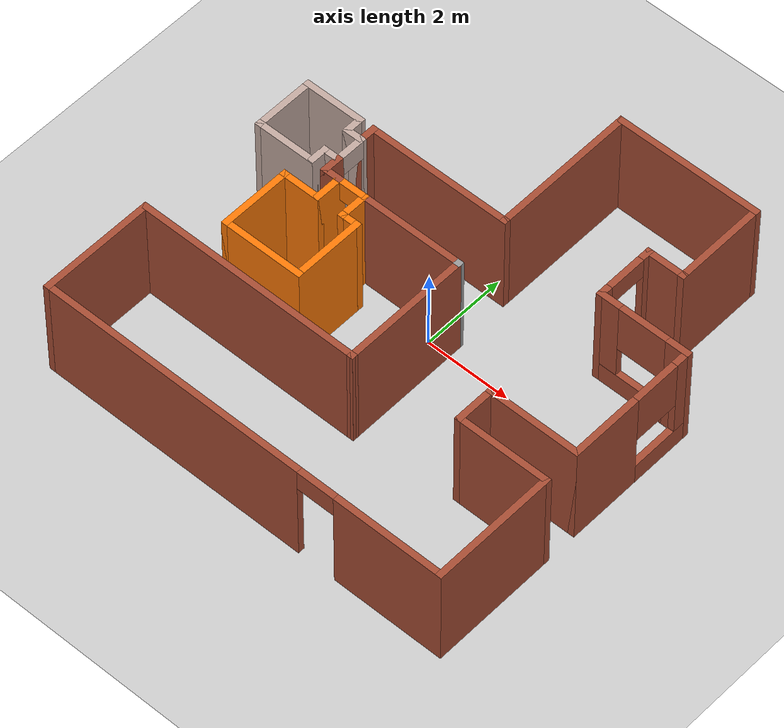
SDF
<sdf version="1.6">
 <world name="default">
  <model name="ground_plane">
   <static>1</static>
   <link name="link">
    <collision name="collision">
     <geometry><plane><normal>0 0 1</normal><size>100 100</size></plane></geometry>
     <surface>
      <contact><collide_bitmask>65535</collide_bitmask></contact>
      <friction><ode><mu>100</mu><mu2>50</mu2></ode></friction>
     </surface>
    </collision>
    <visual name="visual">
     <cast_shadows>0</cast_shadows>
     <geometry><plane><normal>0 0 1</normal><size>100 100</size></plane></geometry>
     <material>
      <script><uri>file://media/materials/scripts/gazebo.material</uri><name>Gazebo/Grey</name></script>
     </material>
    </visual>
   </link>
  </model>
  <model name="home">
   <pose>0.07564 -0.09647 0 0 -0 0</pose>
   <link name="Wall_10">
    <collision name="Wall_10_Collision">
     <geometry><box><size>2.25 0.15 2.5</size></box></geometry>
     <pose>0 0 1.25 0 -0 0</pose>
    </collision>
    <visual name="Wall_10_Visual">
     <pose>0 0 1.25 0 -0 0</pose>
     <geometry><box><size>2.25 0.15 2.5</size></box></geometry>
     <material>
      <script><uri>file://media/materials/scripts/gazebo.material</uri><name>Gazebo/Bricks</name></script>
      <ambient>1 1 1 1</ambient>
     </material>
     <meta><layer>0</layer></meta>
    </visual>
    <pose>3.67503 4.075 0 0 -0 1.5708</pose>
   </link>
   <link name="Wall_11">
    <collision name="Wall_11_Collision">
     <geometry><box><size>3.5 0.15 2.5</size></box></geometry>
     <pose>0 0 1.25 0 -0 0</pose>
    </collision>
    <visual name="Wall_11_Visual">
     <pose>0 0 1.25 0 -0 0</pose>
     <geometry><box><size>3.5 0.15 2.5</size></box></geometry>
     <material>
      <script><uri>file://media/materials/scripts/gazebo.material</uri><name>Gazebo/Bricks</name></script>
      <ambient>1 1 1 1</ambient>
     </material>
     <meta><layer>0</layer></meta>
    </visual>
    <pose>2.00003 5.125 0 0 -0 3.14159</pose>
   </link>
   <link name="Wall_12">
    <collision name="Wall_12_Collision">
     <geometry><box><size>3.5 0.15 2.5</size></box></geometry>
     <pose>0 0 1.25 0 -0 0</pose>
    </collision>
    <visual name="Wall_12_Visual">
     <pose>0 0 1.25 0 -0 0</pose>
     <geometry><box><size>3.5 0.15 2.5</size></box></geometry>
     <material>
      <script><uri>file://media/materials/scripts/gazebo.material</uri><name>Gazebo/Bricks</name></script>
      <ambient>1 1 1 1</ambient>
     </material>
     <meta><layer>0</layer></meta>
    </visual>
    <pose>0.325032 3.45 0 0 0 -1.5708</pose>
   </link>
   <link name="Wall_13">
    <collision name="Wall_13_Collision">
     <geometry><box><size>3.5 0.15 2.5</size></box></geometry>
     <pose>0 0 1.25 0 -0 0</pose>
    </collision>
    <visual name="Wall_13_Visual">
     <pose>0 0 1.25 0 -0 0</pose>
     <geometry><box><size>3.5 0.15 2.5</size></box></geometry>
     <material>
      <script><uri>file://media/materials/scripts/gazebo.material</uri><name>Gazebo/Bricks</name></script>
      <ambient>1 1 1 1</ambient>
     </material>
     <meta><layer>0</layer></meta>
    </visual>
    <pose>-1.34997 1.775 0 0 -0 3.14159</pose>
   </link>
   <link name="Wall_14">
    <collision name="Wall_14_Collision">
     <geometry><box><size>0.5 0.15 2.5</size></box></geometry>
     <pose>0 0 1.25 0 -0 0</pose>
    </collision>
    <visual name="Wall_14_Visual">
     <pose>0 0 1.25 0 -0 0</pose>
     <geometry><box><size>0.5 0.15 2.5</size></box></geometry>
     <material>
      <script><uri>file://media/materials/scripts/gazebo.material</uri><name>Gazebo/Bricks</name></script>
      <ambient>1 1 1 1</ambient>
     </material>
     <meta><layer>0</layer></meta>
    </visual>
    <pose>-3.02497 1.6 0 0 0 -1.5708</pose>
   </link>
   <link name="Wall_15">
    <collision name="Wall_15_Collision">
     <geometry><box><size>0.5 0.15 2.5</size></box></geometry>
     <pose>0 0 1.25 0 -0 0</pose>
    </collision>
    <visual name="Wall_15_Visual">
     <pose>0 0 1.25 0 -0 0</pose>
     <geometry><box><size>0.5 0.15 2.5</size></box></geometry>
     <material>
      <script><uri>file://media/materials/scripts/gazebo.material</uri><name>Gazebo/Grey</name></script>
      <ambient>0.760784 0.662745 0.627451 1</ambient>
     </material>
     <meta><layer>0</layer></meta>
    </visual>
    <pose>-3.19997 1.425 0 0 -0 3.14159</pose>
   </link>
   <link name="Wall_16">
    <collision name="Wall_16_Collision">
     <geometry><box><size>0.5 0.15 2.5</size></box></geometry>
     <pose>0 0 1.25 0 -0 0</pose>
    </collision>
    <visual name="Wall_16_Visual">
     <pose>0 0 1.25 0 -0 0</pose>
     <geometry><box><size>0.5 0.15 2.5</size></box></geometry>
     <material>
      <script><uri>file://media/materials/scripts/gazebo.material</uri><name>Gazebo/Grey</name></script>
      <ambient>0.760784 0.662745 0.627451 1</ambient>
     </material>
     <meta><layer>0</layer></meta>
    </visual>
    <pose>-3.37497 1.6 0 0 -0 1.5708</pose>
   </link>
   <link name="Wall_17">
    <collision name="Wall_17_Collision">
     <geometry><box><size>1.5 0.15 2.5</size></box></geometry>
     <pose>0 0 1.25 0 -0 0</pose>
    </collision>
    <visual name="Wall_17_Visual">
     <pose>0 0 1.25 0 -0 0</pose>
     <geometry><box><size>1.5 0.15 2.5</size></box></geometry>
     <material>
      <script><uri>file://media/materials/scripts/gazebo.material</uri><name>Gazebo/Grey</name></script>
      <ambient>0.760784 0.662745 0.627451 1</ambient>
     </material>
     <meta><layer>0</layer></meta>
    </visual>
    <pose>-4.04997 1.775 0 0 -0 3.14159</pose>
   </link>
   <link name="Wall_18">
    <collision name="Wall_18_Collision">
     <geometry><box><size>1.5 0.15 2.5</size></box></geometry>
     <pose>0 0 1.25 0 -0 0</pose>
    </collision>
    <visual name="Wall_18_Visual">
     <pose>0 0 1.25 0 -0 0</pose>
     <geometry><box><size>1.5 0.15 2.5</size></box></geometry>
     <material>
      <script><uri>file://media/materials/scripts/gazebo.material</uri><name>Gazebo/Grey</name></script>
      <ambient>0.760784 0.662745 0.627451 1</ambient>
     </material>
     <meta><layer>0</layer></meta>
    </visual>
    <pose>-4.72497 1.1 0 0 0 -1.5708</pose>
   </link>
   <link name="Wall_19">
    <collision name="Wall_19_Collision">
     <geometry><box><size>1.5 0.15 2.5</size></box></geometry>
     <pose>0 0 1.25 0 -0 0</pose>
    </collision>
    <visual name="Wall_19_Visual">
     <pose>0 0 1.25 0 -0 0</pose>
     <geometry><box><size>1.5 0.15 2.5</size></box></geometry>
     <material>
      <script><uri>file://media/materials/scripts/gazebo.material</uri><name>Gazebo/Grey</name></script>
      <ambient>0.760784 0.662745 0.627451 1</ambient>
     </material>
     <meta><layer>0</layer></meta>
    </visual>
    <pose>-4.04997 0.425 0 0 -0 0</pose>
   </link>
   <link name="Wall_2">
    <collision name="Wall_2_Collision">
     <geometry><box><size>3 0.15 2.5</size></box></geometry>
     <pose>0 0 1.25 0 -0 0</pose>
    </collision>
    <visual name="Wall_2_Visual">
     <pose>0 0 1.25 0 -0 0</pose>
     <geometry><box><size>3 0.15 2.5</size></box></geometry>
     <material>
      <script><uri>file://media/materials/scripts/gazebo.material</uri><name>Gazebo/Bricks</name></script>
      <ambient>1 1 1 1</ambient>
     </material>
     <meta><layer>0</layer></meta>
    </visual>
    <pose>4.92503 -3.7 0 0 -0 1.5708</pose>
   </link>
   <link name="Wall_20">
    <collision name="Wall_20_Collision">
     <geometry><box><size>0.5 0.15 2.5</size></box></geometry>
     <pose>0 0 1.25 0 -0 0</pose>
    </collision>
    <visual name="Wall_20_Visual">
     <pose>0 0 1.25 0 -0 0</pose>
     <geometry><box><size>0.5 0.15 2.5</size></box></geometry>
     <material>
      <script><uri>file://media/materials/scripts/gazebo.material</uri><name>Gazebo/Grey</name></script>
      <ambient>0.760784 0.662745 0.627451 1</ambient>
     </material>
     <meta><layer>0</layer></meta>
    </visual>
    <pose>-3.37497 0.6 0 0 -0 1.5708</pose>
   </link>
   <link name="Wall_21">
    <collision name="Wall_21_Collision">
     <geometry><box><size>0.5 0.15 2.5</size></box></geometry>
     <pose>0 0 1.25 0 -0 0</pose>
    </collision>
    <visual name="Wall_21_Visual">
     <pose>0 0 1.25 0 -0 0</pose>
     <geometry><box><size>0.5 0.15 2.5</size></box></geometry>
     <material>
      <script><uri>file://media/materials/scripts/gazebo.material</uri><name>Gazebo/Grey</name></script>
      <ambient>0.760784 0.662745 0.627451 1</ambient>
     </material>
     <meta><layer>0</layer></meta>
    </visual>
    <pose>-3.19997 0.775 0 0 -0 0</pose>
   </link>
   <link name="Wall_22">
    <collision name="Wall_22_Collision">
     <geometry><box><size>0.5 0.15 2.5</size></box></geometry>
     <pose>0 0 1.25 0 -0 0</pose>
    </collision>
    <visual name="Wall_22_Visual">
     <pose>0 0 1.25 0 -0 0</pose>
     <geometry><box><size>0.5 0.15 2.5</size></box></geometry>
     <material>
      <script><uri>file://media/materials/scripts/gazebo.material</uri><name>Gazebo/Bricks</name></script>
      <ambient>1 1 1 1</ambient>
     </material>
     <meta><layer>0</layer></meta>
    </visual>
    <pose>-3.02497 0.6 0 0 0 -1.5708</pose>
   </link>
   <link name="Wall_23">
    <collision name="Wall_23_Collision">
     <geometry><box><size>0.5 0.15 2.5</size></box></geometry>
     <pose>0 0 1.25 0 -0 0</pose>
    </collision>
    <visual name="Wall_23_Visual">
     <pose>0 0 1.25 0 -0 0</pose>
     <geometry><box><size>0.5 0.15 2.5</size></box></geometry>
     <material>
      <script><uri>file://media/materials/scripts/gazebo.material</uri><name>Gazebo/Bricks</name></script>
      <ambient>1 1 1 1</ambient>
     </material>
     <meta><layer>0</layer></meta>
    </visual>
    <pose>-2.84997 0.425 0 0 -0 0</pose>
   </link>
   <link name="Wall_24">
    <collision name="Wall_24_Collision">
     <geometry><box><size>0.75 0.15 2.5</size></box></geometry>
     <pose>0 0 1.25 0 -0 0</pose>
    </collision>
    <visual name="Wall_24_Visual">
     <pose>0 0 1.25 0 -0 0</pose>
     <geometry><box><size>0.75 0.15 2.5</size></box></geometry>
     <material>
      <script><uri>file://media/materials/scripts/gazebo.material</uri><name>Gazebo/Grey</name></script>
      <ambient>0.996078 0.47451 0.0196078 1</ambient>
     </material>
     <meta><layer>0</layer></meta>
    </visual>
    <pose>-2.67497 0.125 0 0 0 -1.5708</pose>
   </link>
   <link name="Wall_28">
    <collision name="Wall_28_Collision">
     <geometry><box><size>1 0.15 2.5</size></box></geometry>
     <pose>0 0 1.25 0 -0 0</pose>
    </collision>
    <visual name="Wall_28_Visual">
     <pose>0 0 1.25 0 -0 0</pose>
     <geometry><box><size>1 0.15 2.5</size></box></geometry>
     <material>
      <script><uri>file://media/materials/scripts/gazebo.material</uri><name>Gazebo/Grey</name></script>
      <ambient>0.996078 0.47451 0.0196078 1</ambient>
     </material>
     <meta><layer>0</layer></meta>
    </visual>
    <pose>-3.09997 -0.175 0 0 -0 3.14159</pose>
   </link>
   <link name="Wall_29">
    <collision name="Wall_29_Collision">
     <geometry><box><size>1.75 0.15 2.5</size></box></geometry>
     <pose>0 0 1.25 0 -0 0</pose>
    </collision>
    <visual name="Wall_29_Visual">
     <pose>0 0 1.25 0 -0 0</pose>
     <geometry><box><size>1.75 0.15 2.5</size></box></geometry>
     <material>
      <script><uri>file://media/materials/scripts/gazebo.material</uri><name>Gazebo/Grey</name></script>
      <ambient>0.996078 0.47451 0.0196078 1</ambient>
     </material>
     <meta><layer>0</layer></meta>
    </visual>
    <pose>-3.52497 -0.975 0 0 0 -1.5708</pose>
   </link>
   <link name="Wall_3">
    <collision name="Wall_3_Collision">
     <geometry><box><size>2.25 0.15 2.5</size></box></geometry>
     <pose>0 0 1.25 0 -0 0</pose>
    </collision>
    <visual name="Wall_3_Visual">
     <pose>0 0 1.25 0 -0 0</pose>
     <geometry><box><size>2.25 0.15 2.5</size></box></geometry>
     <material>
      <script><uri>file://media/materials/scripts/gazebo.material</uri><name>Gazebo/Bricks</name></script>
      <ambient>1 1 1 1</ambient>
     </material>
     <meta><layer>0</layer></meta>
    </visual>
    <pose>3.87503 -2.275 0 0 -0 3.14159</pose>
   </link>
   <link name="Wall_33">
    <collision name="Wall_33_Collision">
     <geometry><box><size>2 0.15 2.5</size></box></geometry>
     <pose>0 0 1.25 0 -0 0</pose>
    </collision>
    <visual name="Wall_33_Visual">
     <pose>0 0 1.25 0 -0 0</pose>
     <geometry><box><size>2 0.15 2.5</size></box></geometry>
     <material>
      <script><uri>file://media/materials/scripts/gazebo.material</uri><name>Gazebo/Grey</name></script>
      <ambient>0.996078 0.47451 0.0196078 1</ambient>
     </material>
     <meta><layer>0</layer></meta>
    </visual>
    <pose>-2.59997 -1.775 0 0 -0 0</pose>
   </link>
   <link name="Wall_34">
    <collision name="Wall_34_Collision">
     <geometry><box><size>1.75 0.15 2.5</size></box></geometry>
     <pose>0 0 1.25 0 -0 0</pose>
    </collision>
    <visual name="Wall_34_Visual">
     <pose>0 0 1.25 0 -0 0</pose>
     <geometry><box><size>1.75 0.15 2.5</size></box></geometry>
     <material>
      <script><uri>file://media/materials/scripts/gazebo.material</uri><name>Gazebo/Grey</name></script>
      <ambient>0.996078 0.47451 0.0196078 1</ambient>
     </material>
     <meta><layer>0</layer></meta>
    </visual>
    <pose>-1.67497 -0.975 0 0 -0 1.5708</pose>
   </link>
   <link name="Wall_35">
    <collision name="Wall_35_Collision">
     <geometry><box><size>0.5 0.15 2.5</size></box></geometry>
     <pose>0 0 1.25 0 -0 0</pose>
    </collision>
    <visual name="Wall_35_Visual">
     <pose>0 0 1.25 0 -0 0</pose>
     <geometry><box><size>0.5 0.15 2.5</size></box></geometry>
     <material>
      <script><uri>file://media/materials/scripts/gazebo.material</uri><name>Gazebo/Grey</name></script>
      <ambient>0.996078 0.47451 0.0196078 1</ambient>
     </material>
     <meta><layer>0</layer></meta>
    </visual>
    <pose>-1.84997 -0.175 0 0 -0 3.14159</pose>
   </link>
   <link name="Wall_36">
    <collision name="Wall_36_Collision">
     <geometry><box><size>0.75 0.15 2.5</size></box></geometry>
     <pose>0 0 1.25 0 -0 0</pose>
    </collision>
    <visual name="Wall_36_Visual">
     <pose>0 0 1.25 0 -0 0</pose>
     <geometry><box><size>0.75 0.15 2.5</size></box></geometry>
     <material>
      <script><uri>file://media/materials/scripts/gazebo.material</uri><name>Gazebo/Grey</name></script>
      <ambient>0.996078 0.47451 0.0196078 1</ambient>
     </material>
     <meta><layer>0</layer></meta>
    </visual>
    <pose>-2.02497 0.125 0 0 -0 1.5708</pose>
   </link>
   <link name="Wall_37">
    <collision name="Wall_37_Collision">
     <geometry><box><size>2.5 0.15 2.5</size></box></geometry>
     <pose>0 0 1.25 0 -0 0</pose>
    </collision>
    <visual name="Wall_37_Visual">
     <pose>0 0 1.25 0 -0 0</pose>
     <geometry><box><size>2.5 0.15 2.5</size></box></geometry>
     <material>
      <script><uri>file://media/materials/scripts/gazebo.material</uri><name>Gazebo/Bricks</name></script>
      <ambient>1 1 1 1</ambient>
     </material>
     <meta><layer>0</layer></meta>
    </visual>
    <pose>-0.849968 0.425 0 0 -0 0</pose>
   </link>
   <link name="Wall_4">
    <collision name="Wall_4_Collision">
     <geometry><box><size>1 0.15 2.5</size></box></geometry>
     <pose>0 0 1.25 0 -0 0</pose>
    </collision>
    <visual name="Wall_4_Visual">
     <pose>0 0 1.25 0 -0 0</pose>
     <geometry><box><size>1 0.15 2.5</size></box></geometry>
     <material>
      <script><uri>file://media/materials/scripts/gazebo.material</uri><name>Gazebo/Bricks</name></script>
      <ambient>1 1 1 1</ambient>
     </material>
     <meta><layer>0</layer></meta>
    </visual>
    <pose>2.82503 -1.85 0 0 -0 1.5708</pose>
   </link>
   <link name="Wall_43">
    <pose>3.2e-05 -5.125 0 0 -0 3.14159</pose>
    <visual name="Wall_43_Visual_0">
     <pose>-3.68092 0 1.25 0 -0 0</pose>
     <geometry><box><size>2.63816 0.15 2.5</size></box></geometry>
     <material>
      <script><uri>file://media/materials/scripts/gazebo.material</uri><name>Gazebo/Bricks</name></script>
      <ambient>1 1 1 1</ambient>
     </material>
     <meta><layer>0</layer></meta>
    </visual>
    <collision name="Wall_43_Collision_0">
     <geometry><box><size>2.63816 0.15 2.5</size></box></geometry>
     <pose>-3.68092 0 1.25 0 -0 0</pose>
    </collision>
    <visual name="Wall_43_Visual_1">
     <pose>1.76908 0 1.25 0 -0 0</pose>
     <geometry><box><size>6.46184 0.15 2.5</size></box></geometry>
     <material>
      <script><uri>file://media/materials/scripts/gazebo.material</uri><name>Gazebo/Bricks</name></script>
      <ambient>1 1 1 1</ambient>
     </material>
     <meta><layer>0</layer></meta>
    </visual>
    <collision name="Wall_43_Collision_1">
     <geometry><box><size>6.46184 0.15 2.5</size></box></geometry>
     <pose>1.76908 0 1.25 0 -0 0</pose>
    </collision>
    <visual name="Wall_43_Visual_2">
     <pose>-1.91184 0 2.25 0 -0 0</pose>
     <geometry><box><size>0.9 0.15 0.5</size></box></geometry>
     <material>
      <script><uri>file://media/materials/scripts/gazebo.material</uri><name>Gazebo/Bricks</name></script>
      <ambient>1 1 1 1</ambient>
     </material>
     <meta><layer>0</layer></meta>
    </visual>
    <collision name="Wall_43_Collision_2">
     <geometry><box><size>0.9 0.15 0.5</size></box></geometry>
     <pose>-1.91184 0 2.25 0 -0 0</pose>
    </collision>
   </link>
   <link name="Wall_44">
    <collision name="Wall_44_Collision">
     <geometry><box><size>2.75 0.15 2.5</size></box></geometry>
     <pose>0 0 1.25 0 -0 0</pose>
    </collision>
    <visual name="Wall_44_Visual">
     <pose>0 0 1.25 0 -0 0</pose>
     <geometry><box><size>2.75 0.15 2.5</size></box></geometry>
     <material>
      <script><uri>file://media/materials/scripts/gazebo.material</uri><name>Gazebo/Bricks</name></script>
      <ambient>1 1 1 1</ambient>
     </material>
     <meta><layer>0</layer></meta>
    </visual>
    <pose>-4.92497 -3.825 0 0 -0 1.5708</pose>
   </link>
   <link name="Wall_48">
    <collision name="Wall_48_Collision">
     <geometry><box><size>5.45338 0.15 2.5</size></box></geometry>
     <pose>0 0 1.25 0 -0 0</pose>
    </collision>
    <visual name="Wall_48_Visual">
     <pose>0 0 1.25 0 -0 0</pose>
     <geometry><box><size>5.45338 0.15 2.5</size></box></geometry>
     <material>
      <script><uri>file://media/materials/scripts/gazebo.material</uri><name>Gazebo/Bricks</name></script>
      <ambient>1 1 1 1</ambient>
     </material>
     <meta><layer>0</layer></meta>
    </visual>
    <pose>-2.27328 -2.52727 0 0 0 -0.000856</pose>
   </link>
   <link name="Wall_49">
    <collision name="Wall_49_Collision">
     <geometry><box><size>3.09697 0.15 2.5</size></box></geometry>
     <pose>0 0 1.25 0 -0 0</pose>
    </collision>
    <visual name="Wall_49_Visual">
     <pose>0 0 1.25 0 -0 0</pose>
     <geometry><box><size>3.09697 0.15 2.5</size></box></geometry>
     <material>
      <script><uri>file://media/materials/scripts/gazebo.material</uri><name>Gazebo/Bricks</name></script>
      <ambient>1 1 1 1</ambient>
     </material>
     <meta><layer>0</layer></meta>
    </visual>
    <pose>0.375849 -1.05607 0 0 -0 1.57254</pose>
   </link>
   <link name="Wall_5">
    <collision name="Wall_5_Collision">
     <geometry><box><size>2.25 0.15 2.5</size></box></geometry>
     <pose>0 0 1.25 0 -0 0</pose>
    </collision>
    <visual name="Wall_5_Visual">
     <pose>0 0 1.25 0 -0 0</pose>
     <geometry><box><size>2.25 0.15 2.5</size></box></geometry>
     <material>
      <script><uri>file://media/materials/scripts/gazebo.material</uri><name>Gazebo/Bricks</name></script>
      <ambient>1 1 1 1</ambient>
     </material>
     <meta><layer>0</layer></meta>
    </visual>
    <pose>3.87503 -1.425 0 0 -0 0</pose>
   </link>
   <link name="Wall_52">
    <collision name="Wall_52_Collision">
     <geometry><box><size>0.15 0.15 2.5</size></box></geometry>
     <pose>0 0 1.25 0 -0 0</pose>
    </collision>
    <visual name="Wall_52_Visual">
     <pose>0 0 1.25 0 -0 0</pose>
     <geometry><box><size>0.15 0.15 2.5</size></box></geometry>
     <material>
      <script><uri>file://media/materials/scripts/gazebo.material</uri><name>Gazebo/Grey</name></script>
      <ambient>1 1 1 1</ambient>
     </material>
     <meta><layer>0</layer></meta>
    </visual>
    <pose>0.373287 0.421097 0 0 -0 0</pose>
   </link>
   <link name="Wall_55">
    <pose>-3.02497 1.1 0 0 0 -1.5708</pose>
    <visual name="Wall_55_Visual_0">
     <pose>-0.354187 0 1.25 0 -0 0</pose>
     <geometry><box><size>0.091626 0.15 2.5</size></box></geometry>
     <material>
      <script><uri>file://media/materials/scripts/gazebo.material</uri><name>Gazebo/Grey</name></script>
      <ambient>0.760784 0.662745 0.627451 1</ambient>
     </material>
     <meta><layer>0</layer></meta>
    </visual>
    <collision name="Wall_55_Collision_0">
     <geometry><box><size>0.091626 0.15 2.5</size></box></geometry>
     <pose>-0.354187 0 1.25 0 -0 0</pose>
    </collision>
    <visual name="Wall_55_Visual_1">
     <pose>0.362229 0 1.25 0 -0 0</pose>
     <geometry><box><size>0.075541 0.15 2.5</size></box></geometry>
     <material>
      <script><uri>file://media/materials/scripts/gazebo.material</uri><name>Gazebo/Grey</name></script>
      <ambient>0.760784 0.662745 0.627451 1</ambient>
     </material>
     <meta><layer>0</layer></meta>
    </visual>
    <collision name="Wall_55_Collision_1">
     <geometry><box><size>0.075541 0.15 2.5</size></box></geometry>
     <pose>0.362229 0 1.25 0 -0 0</pose>
    </collision>
    <visual name="Wall_55_Visual_2">
     <pose>0.008042 0 2.25 0 -0 0</pose>
     <geometry><box><size>0.632833 0.15 0.5</size></box></geometry>
     <material>
      <script><uri>file://media/materials/scripts/gazebo.material</uri><name>Gazebo/Grey</name></script>
      <ambient>0.760784 0.662745 0.627451 1</ambient>
     </material>
     <meta><layer>0</layer></meta>
    </visual>
    <collision name="Wall_55_Collision_2">
     <geometry><box><size>0.632833 0.15 0.5</size></box></geometry>
     <pose>0.008042 0 2.25 0 -0 0</pose>
    </collision>
   </link>
   <link name="Wall_57">
    <pose>-2.34997 0.425 0 0 -0 0</pose>
    <visual name="Wall_57_Visual_0">
     <pose>-0.365442 0 1.25 0 -0 0</pose>
     <geometry><box><size>0.069115 0.15 2.5</size></box></geometry>
     <material>
      <script><uri>file://media/materials/scripts/gazebo.material</uri><name>Gazebo/Grey</name></script>
      <ambient>0.996078 0.47451 0.0196078 1</ambient>
     </material>
     <meta><layer>0</layer></meta>
    </visual>
    <collision name="Wall_57_Collision_0">
     <geometry><box><size>0.069115 0.15 2.5</size></box></geometry>
     <pose>-0.365442 0 1.25 0 -0 0</pose>
    </collision>
    <visual name="Wall_57_Visual_1">
     <pose>0.355623 0 1.25 0 -0 0</pose>
     <geometry><box><size>0.088753 0.15 2.5</size></box></geometry>
     <material>
      <script><uri>file://media/materials/scripts/gazebo.material</uri><name>Gazebo/Grey</name></script>
      <ambient>0.996078 0.47451 0.0196078 1</ambient>
     </material>
     <meta><layer>0</layer></meta>
    </visual>
    <collision name="Wall_57_Collision_1">
     <geometry><box><size>0.088753 0.15 2.5</size></box></geometry>
     <pose>0.355623 0 1.25 0 -0 0</pose>
    </collision>
    <visual name="Wall_57_Visual_2">
     <pose>-0.009819 0 2.25 0 -0 0</pose>
     <geometry><box><size>0.642131 0.15 0.5</size></box></geometry>
     <material>
      <script><uri>file://media/materials/scripts/gazebo.material</uri><name>Gazebo/Grey</name></script>
      <ambient>0.996078 0.47451 0.0196078 1</ambient>
     </material>
     <meta><layer>0</layer></meta>
    </visual>
    <collision name="Wall_57_Collision_2">
     <geometry><box><size>0.642131 0.15 0.5</size></box></geometry>
     <pose>-0.009819 0 2.25 0 -0 0</pose>
    </collision>
   </link>
   <link name="Wall_6">
    <pose>4.92503 0.125 0 0 -0 1.5708</pose>
    <visual name="Wall_6_Visual_0">
     <pose>-0.764074 0 1.25 0 -0 0</pose>
     <geometry><box><size>1.72185 0.15 2.5</size></box></geometry>
     <material>
      <script><uri>file://media/materials/scripts/gazebo.material</uri><name>Gazebo/Bricks</name></script>
      <ambient>1 1 1 1</ambient>
     </material>
     <meta><layer>0</layer></meta>
    </visual>
    <collision name="Wall_6_Collision_0">
     <geometry><box><size>1.72185 0.15 2.5</size></box></geometry>
     <pose>-0.764074 0 1.25 0 -0 0</pose>
    </collision>
    <visual name="Wall_6_Visual_1">
     <pose>0.860926 0 0.25 0 -0 0</pose>
     <geometry><box><size>1.52815 0.15 0.5</size></box></geometry>
     <material>
      <script><uri>file://media/materials/scripts/gazebo.material</uri><name>Gazebo/Bricks</name></script>
      <ambient>1 1 1 1</ambient>
     </material>
     <meta><layer>0</layer></meta>
    </visual>
    <collision name="Wall_6_Collision_1">
     <geometry><box><size>1.52815 0.15 0.5</size></box></geometry>
     <pose>0.860926 0 0.25 0 -0 0</pose>
    </collision>
    <visual name="Wall_6_Visual_2">
     <pose>1.40882 0 1.5 0 -0 0</pose>
     <geometry><box><size>0.432369 0.15 2</size></box></geometry>
     <material>
      <script><uri>file://media/materials/scripts/gazebo.material</uri><name>Gazebo/Bricks</name></script>
      <ambient>1 1 1 1</ambient>
     </material>
     <meta><layer>0</layer></meta>
    </visual>
    <collision name="Wall_6_Collision_2">
     <geometry><box><size>0.432369 0.15 2</size></box></geometry>
     <pose>1.40882 0 1.5 0 -0 0</pose>
    </collision>
    <visual name="Wall_6_Visual_3">
     <pose>0.644742 0 1.9 0 -0 0</pose>
     <geometry><box><size>1.09578 0.15 1.2</size></box></geometry>
     <material>
      <script><uri>file://media/materials/scripts/gazebo.material</uri><name>Gazebo/Bricks</name></script>
      <ambient>1 1 1 1</ambient>
     </material>
     <meta><layer>0</layer></meta>
    </visual>
    <collision name="Wall_6_Collision_3">
     <geometry><box><size>1.09578 0.15 1.2</size></box></geometry>
     <pose>0.644742 0 1.9 0 -0 0</pose>
    </collision>
   </link>
   <link name="Wall_7">
    <pose>3.87503 1.675 0 0 -0 3.14159</pose>
    <visual name="Wall_7_Visual_0">
     <pose>-0.852878 0 1.25 0 -0 0</pose>
     <geometry><box><size>0.544245 0.15 2.5</size></box></geometry>
     <material>
      <script><uri>file://media/materials/scripts/gazebo.material</uri><name>Gazebo/Bricks</name></script>
      <ambient>1 1 1 1</ambient>
     </material>
     <meta><layer>0</layer></meta>
    </visual>
    <collision name="Wall_7_Collision_0">
     <geometry><box><size>0.544245 0.15 2.5</size></box></geometry>
     <pose>-0.852878 0 1.25 0 -0 0</pose>
    </collision>
    <visual name="Wall_7_Visual_1">
     <pose>0.272122 0 0.25 0 -0 0</pose>
     <geometry><box><size>1.70575 0.15 0.5</size></box></geometry>
     <material>
      <script><uri>file://media/materials/scripts/gazebo.material</uri><name>Gazebo/Bricks</name></script>
      <ambient>1 1 1 1</ambient>
     </material>
     <meta><layer>0</layer></meta>
    </visual>
    <collision name="Wall_7_Collision_1">
     <geometry><box><size>1.70575 0.15 0.5</size></box></geometry>
     <pose>0.272122 0 0.25 0 -0 0</pose>
    </collision>
    <visual name="Wall_7_Visual_2">
     <pose>0.841009 0 1.5 0 -0 0</pose>
     <geometry><box><size>0.567982 0.15 2</size></box></geometry>
     <material>
      <script><uri>file://media/materials/scripts/gazebo.material</uri><name>Gazebo/Bricks</name></script>
      <ambient>1 1 1 1</ambient>
     </material>
     <meta><layer>0</layer></meta>
    </visual>
    <collision name="Wall_7_Collision_2">
     <geometry><box><size>0.567982 0.15 2</size></box></geometry>
     <pose>0.841009 0 1.5 0 -0 0</pose>
    </collision>
    <visual name="Wall_7_Visual_3">
     <pose>-0.011869 0 1.9 0 -0 0</pose>
     <geometry><box><size>1.13777 0.15 1.2</size></box></geometry>
     <material>
      <script><uri>file://media/materials/scripts/gazebo.material</uri><name>Gazebo/Bricks</name></script>
      <ambient>1 1 1 1</ambient>
     </material>
     <meta><layer>0</layer></meta>
    </visual>
    <collision name="Wall_7_Collision_3">
     <geometry><box><size>1.13777 0.15 1.2</size></box></geometry>
     <pose>-0.011869 0 1.9 0 -0 0</pose>
    </collision>
   </link>
   <link name="Wall_8">
    <pose>2.82503 2.35 0 0 -0 1.5708</pose>
    <visual name="Wall_8_Visual_0">
     <pose>-0.598383 0 1.25 0 -0 0</pose>
     <geometry><box><size>0.303235 0.15 2.5</size></box></geometry>
     <material>
      <script><uri>file://media/materials/scripts/gazebo.material</uri><name>Gazebo/Bricks</name></script>
      <ambient>1 1 1 1</ambient>
     </material>
     <meta><layer>0</layer></meta>
    </visual>
    <collision name="Wall_8_Collision_0">
     <geometry><box><size>0.303235 0.15 2.5</size></box></geometry>
     <pose>-0.598383 0 1.25 0 -0 0</pose>
    </collision>
    <visual name="Wall_8_Visual_1">
     <pose>0.601617 0 1.25 0 -0 0</pose>
     <geometry><box><size>0.296765 0.15 2.5</size></box></geometry>
     <material>
      <script><uri>file://media/materials/scripts/gazebo.material</uri><name>Gazebo/Bricks</name></script>
      <ambient>1 1 1 1</ambient>
     </material>
     <meta><layer>0</layer></meta>
    </visual>
    <collision name="Wall_8_Collision_1">
     <geometry><box><size>0.296765 0.15 2.5</size></box></geometry>
     <pose>0.601617 0 1.25 0 -0 0</pose>
    </collision>
    <visual name="Wall_8_Visual_2">
     <pose>0.003235 0 2.25 0 -0 0</pose>
     <geometry><box><size>0.9 0.15 0.5</size></box></geometry>
     <material>
      <script><uri>file://media/materials/scripts/gazebo.material</uri><name>Gazebo/Bricks</name></script>
      <ambient>1 1 1 1</ambient>
     </material>
     <meta><layer>0</layer></meta>
    </visual>
    <collision name="Wall_8_Collision_2">
     <geometry><box><size>0.9 0.15 0.5</size></box></geometry>
     <pose>0.003235 0 2.25 0 -0 0</pose>
    </collision>
   </link>
   <link name="Wall_9">
    <collision name="Wall_9_Collision">
     <geometry><box><size>1 0.15 2.5</size></box></geometry>
     <pose>0 0 1.25 0 -0 0</pose>
    </collision>
    <visual name="Wall_9_Visual">
     <pose>0 0 1.25 0 -0 0</pose>
     <geometry><box><size>1 0.15 2.5</size></box></geometry>
     <material>
      <script><uri>file://media/materials/scripts/gazebo.material</uri><name>Gazebo/Bricks</name></script>
      <ambient>1 1 1 1</ambient>
     </material>
     <meta><layer>0</layer></meta>
    </visual>
    <pose>3.25003 3.025 0 0 -0 0</pose>
   </link>
   <static>1</static>
  </model>
  <model name="wood_cube_10cm">
   <link name="link">
    <pose>0 0 0.05 0 -0 0</pose>
    <inertial>
     <mass>0.5167</mass>
     <inertia>
      <ixx>0.000861167</ixx>
      <ixy>0</ixy>
      <ixz>0</ixz>
      <iyy>0.000861167</iyy>
      <iyz>0</iyz>
      <izz>0.000861167</izz>
     </inertia>
    </inertial>
    <collision name="collision">
     <geometry><box><size>0.1 0.1 0.1</size></box></geometry>
     <surface>
      <contact>
       <poissons_ratio>0.347</poissons_ratio>
       <elastic_modulus>8.8e+09</elastic_modulus>
       <ode><kp>100000</kp><kd>100</kd><max_vel>100</max_vel><min_depth>0.001</min_depth></ode>
      </contact>
      <friction>
       <torsional>
        <coefficient>1</coefficient>
        <use_patch_radius>0</use_patch_radius>
        <surface_radius>0.01</surface_radius>
       </torsional>
      </friction>
     </surface>
    </collision>
    <visual name="visual">
     <geometry><box><size>0.1 0.1 0.1</size></box></geometry>
     <material>
      <script><uri>file://media/materials/scripts/gazebo.material</uri><name>Gazebo/Wood</name></script>
     </material>
    </visual>
   </link>
   <pose>-4.4508 0.521058 -0.001013 0 -0 0</pose>
  </model>
  <model name="wood_cube_7_5cm">
   <link name="link">
    <pose>0 0 0.0375 0 -0 0</pose>
    <inertial>
     <mass>0.2249</mass>
     <inertia>
      <ixx>0.000210844</ixx>
      <ixy>0</ixy>
      <ixz>0</ixz>
      <iyy>0.000210844</iyy>
      <iyz>0</iyz>
      <izz>0.000210844</izz>
     </inertia>
    </inertial>
    <collision name="collision">
     <geometry><box><size>0.075 0.075 0.075</size></box></geometry>
     <surface>
      <contact>
       <poissons_ratio>0.347</poissons_ratio>
       <elastic_modulus>8.8e+09</elastic_modulus>
       <ode><kp>100000</kp><kd>100</kd><max_vel>100</max_vel><min_depth>0.001</min_depth></ode>
      </contact>
      <friction>
       <torsional>
        <coefficient>1</coefficient>
        <use_patch_radius>0</use_patch_radius>
        <surface_radius>0.01</surface_radius>
       </torsional>
      </friction>
     </surface>
    </collision>
    <visual name="visual">
     <geometry><box><size>0.075 0.075 0.075</size></box></geometry>
     <material>
      <script><uri>file://media/materials/scripts/gazebo.material</uri><name>Gazebo/Wood</name></script>
     </material>
    </visual>
   </link>
   <pose>-4.48636 0.626274 -0.001005 0 -0 0</pose>
  </model>
 </world>
</sdf>
